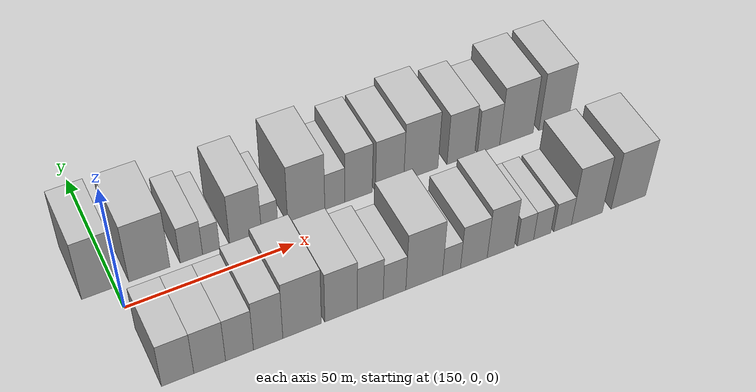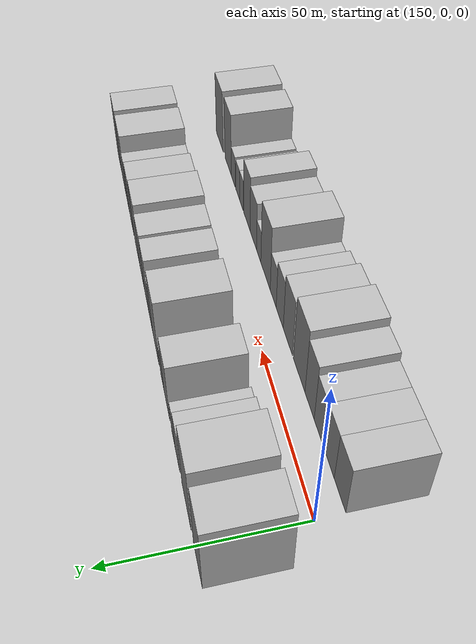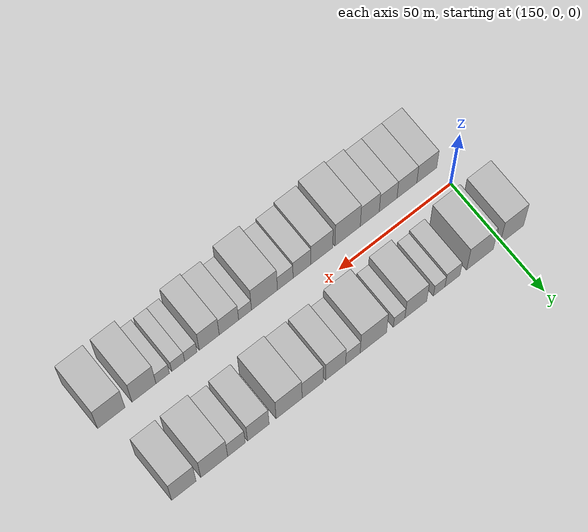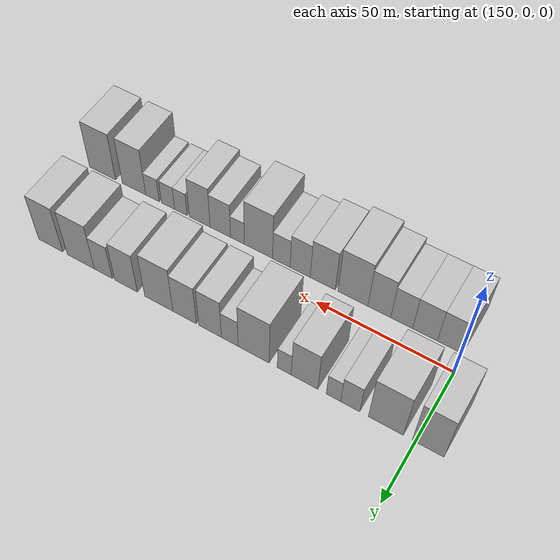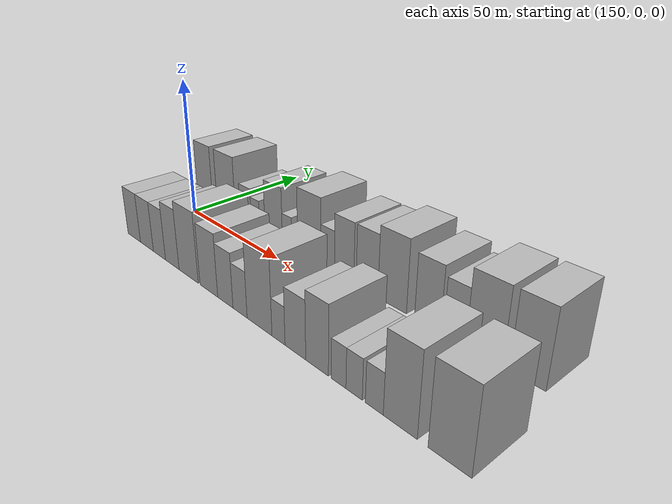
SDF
<sdf version="1.6">
 <world name="default">
  <model name="building_14">
   <static>1</static>
   <pose>145.7242 17.5000 0 0.000000 0.000000 1.570796</pose>
   <link name="link">
    <pose>0 0 12.00 0 0 0</pose>
    <collision name="collision"><geometry><box><size>20.0000 10.5395 24.0000</size></box></geometry></collision>
    <visual name="visual">
     <cast_shadows>0</cast_shadows>
     <geometry><box><size>20.0000 10.5395 24.0000</size></box></geometry>
     <material>
      <script>
       <uri>model://HANNAS_wall/materials/scripts</uri>
       <uri>model://HANNAS_wall/materials/textures</uri>
       <name>vrc/HANNAS_wall</name>
      </script>
     </material>
    </visual>
   </link>
  </model>
  <model name="building_15">
   <static>1</static>
   <pose>159.9695 17.5000 0 0.000000 0.000000 1.570796</pose>
   <link name="link">
    <pose>0 0 12.00 0 0 0</pose>
    <collision name="collision"><geometry><box><size>20.0000 11.9512 24.0000</size></box></geometry></collision>
    <visual name="visual">
     <cast_shadows>0</cast_shadows>
     <geometry><box><size>20.0000 11.9512 24.0000</size></box></geometry>
     <material>
      <script>
       <uri>model://HANNAS_wall/materials/scripts</uri>
       <uri>model://HANNAS_wall/materials/textures</uri>
       <name>vrc/HANNAS_wall</name>
      </script>
     </material>
    </visual>
   </link>
  </model>
  <model name="building_16">
   <static>1</static>
   <pose>172.2818 17.5000 0 0.000000 0.000000 1.570796</pose>
   <link name="link">
    <pose>0 0 7.50 0 0 0</pose>
    <collision name="collision"><geometry><box><size>20.0000 6.6733 15.0000</size></box></geometry></collision>
    <visual name="visual">
     <cast_shadows>0</cast_shadows>
     <geometry><box><size>20.0000 6.6733 15.0000</size></box></geometry>
     <material>
      <script>
       <uri>model://HANNAS_wall/materials/scripts</uri>
       <uri>model://HANNAS_wall/materials/textures</uri>
       <name>vrc/HANNAS_wall</name>
      </script>
     </material>
    </visual>
   </link>
  </model>
  <model name="building_17">
   <static>1</static>
   <pose>178.1721 17.5000 0 0.000000 0.000000 1.570796</pose>
   <link name="link">
    <pose>0 0 6.00 0 0 0</pose>
    <collision name="collision"><geometry><box><size>20.0000 5.1073 12.0000</size></box></geometry></collision>
    <visual name="visual">
     <cast_shadows>0</cast_shadows>
     <geometry><box><size>20.0000 5.1073 12.0000</size></box></geometry>
     <material>
      <script>
       <uri>model://HANNAS_wall/materials/scripts</uri>
       <uri>model://HANNAS_wall/materials/textures</uri>
       <name>vrc/HANNAS_wall</name>
      </script>
     </material>
    </visual>
   </link>
  </model>
  <model name="building_18">
   <static>1</static>
   <pose>188.5494 17.5000 0 0.000000 0.000000 1.570796</pose>
   <link name="link">
    <pose>0 0 10.50 0 0 0</pose>
    <collision name="collision"><geometry><box><size>20.0000 9.6472 21.0000</size></box></geometry></collision>
    <visual name="visual">
     <cast_shadows>0</cast_shadows>
     <geometry><box><size>20.0000 9.6472 21.0000</size></box></geometry>
     <material>
      <script>
       <uri>model://HANNAS_wall/materials/scripts</uri>
       <uri>model://HANNAS_wall/materials/textures</uri>
       <name>vrc/HANNAS_wall</name>
      </script>
     </material>
    </visual>
   </link>
  </model>
  <model name="building_19">
   <static>1</static>
   <pose>195.9077 17.5000 0 0.000000 0.000000 1.570796</pose>
   <link name="link">
    <pose>0 0 6.00 0 0 0</pose>
    <collision name="collision"><geometry><box><size>20.0000 5.0694 12.0000</size></box></geometry></collision>
    <visual name="visual">
     <cast_shadows>0</cast_shadows>
     <geometry><box><size>20.0000 5.0694 12.0000</size></box></geometry>
     <material>
      <script>
       <uri>model://HANNAS_wall/materials/scripts</uri>
       <uri>model://HANNAS_wall/materials/textures</uri>
       <name>vrc/HANNAS_wall</name>
      </script>
     </material>
    </visual>
   </link>
  </model>
  <model name="building_20">
   <static>1</static>
   <pose>207.2288 17.5000 0 0.000000 0.000000 1.570796</pose>
   <link name="link">
    <pose>0 0 12.00 0 0 0</pose>
    <collision name="collision"><geometry><box><size>20.0000 11.5728 24.0000</size></box></geometry></collision>
    <visual name="visual">
     <cast_shadows>0</cast_shadows>
     <geometry><box><size>20.0000 11.5728 24.0000</size></box></geometry>
     <material>
      <script>
       <uri>model://HANNAS_wall/materials/scripts</uri>
       <uri>model://HANNAS_wall/materials/textures</uri>
       <name>vrc/HANNAS_wall</name>
      </script>
     </material>
    </visual>
   </link>
  </model>
  <model name="building_21">
   <static>1</static>
   <pose>216.1947 17.5000 0 0.000000 0.000000 1.570796</pose>
   <link name="link">
    <pose>0 0 7.50 0 0 0</pose>
    <collision name="collision"><geometry><box><size>20.0000 6.3590 15.0000</size></box></geometry></collision>
    <visual name="visual">
     <cast_shadows>0</cast_shadows>
     <geometry><box><size>20.0000 6.3590 15.0000</size></box></geometry>
     <material>
      <script>
       <uri>model://HANNAS_wall/materials/scripts</uri>
       <uri>model://HANNAS_wall/materials/textures</uri>
       <name>vrc/HANNAS_wall</name>
      </script>
     </material>
    </visual>
   </link>
  </model>
  <model name="building_22">
   <static>1</static>
   <pose>223.7285 17.5000 0 0.000000 0.000000 1.570796</pose>
   <link name="link">
    <pose>0 0 10.50 0 0 0</pose>
    <collision name="collision"><geometry><box><size>20.0000 8.7087 21.0000</size></box></geometry></collision>
    <visual name="visual">
     <cast_shadows>0</cast_shadows>
     <geometry><box><size>20.0000 8.7087 21.0000</size></box></geometry>
     <material>
      <script>
       <uri>model://HANNAS_wall/materials/scripts</uri>
       <uri>model://HANNAS_wall/materials/textures</uri>
       <name>vrc/HANNAS_wall</name>
      </script>
     </material>
    </visual>
   </link>
  </model>
  <model name="building_23">
   <static>1</static>
   <pose>233.6760 17.5000 0 0.000000 0.000000 1.570796</pose>
   <link name="link">
    <pose>0 0 10.50 0 0 0</pose>
    <collision name="collision"><geometry><box><size>20.0000 9.1863 21.0000</size></box></geometry></collision>
    <visual name="visual">
     <cast_shadows>0</cast_shadows>
     <geometry><box><size>20.0000 9.1863 21.0000</size></box></geometry>
     <material>
      <script>
       <uri>model://HANNAS_wall/materials/scripts</uri>
       <uri>model://HANNAS_wall/materials/textures</uri>
       <name>vrc/HANNAS_wall</name>
      </script>
     </material>
    </visual>
   </link>
  </model>
  <model name="building_24">
   <static>1</static>
   <pose>243.8894 17.5000 0 0.000000 0.000000 1.570796</pose>
   <link name="link">
    <pose>0 0 12.00 0 0 0</pose>
    <collision name="collision"><geometry><box><size>20.0000 11.2405 24.0000</size></box></geometry></collision>
    <visual name="visual">
     <cast_shadows>0</cast_shadows>
     <geometry><box><size>20.0000 11.2405 24.0000</size></box></geometry>
     <material>
      <script>
       <uri>model://HANNAS_wall/materials/scripts</uri>
       <uri>model://HANNAS_wall/materials/textures</uri>
       <name>vrc/HANNAS_wall</name>
      </script>
     </material>
    </visual>
   </link>
  </model>
  <model name="building_25">
   <static>1</static>
   <pose>257.1364 17.5000 0 0.000000 0.000000 1.570796</pose>
   <link name="link">
    <pose>0 0 10.50 0 0 0</pose>
    <collision name="collision"><geometry><box><size>20.0000 9.2535 21.0000</size></box></geometry></collision>
    <visual name="visual">
     <cast_shadows>0</cast_shadows>
     <geometry><box><size>20.0000 9.2535 21.0000</size></box></geometry>
     <material>
      <script>
       <uri>model://HANNAS_wall/materials/scripts</uri>
       <uri>model://HANNAS_wall/materials/textures</uri>
       <name>vrc/HANNAS_wall</name>
      </script>
     </material>
    </visual>
   </link>
  </model>
  <model name="building_26">
   <static>1</static>
   <pose>266.4977 17.5000 0 0.000000 0.000000 1.570796</pose>
   <link name="link">
    <pose>0 0 9.00 0 0 0</pose>
    <collision name="collision"><geometry><box><size>20.0000 7.4690 18.0000</size></box></geometry></collision>
    <visual name="visual">
     <cast_shadows>0</cast_shadows>
     <geometry><box><size>20.0000 7.4690 18.0000</size></box></geometry>
     <material>
      <script>
       <uri>model://HANNAS_wall/materials/scripts</uri>
       <uri>model://HANNAS_wall/materials/textures</uri>
       <name>vrc/HANNAS_wall</name>
      </script>
     </material>
    </visual>
   </link>
  </model>
  <model name="building_27">
   <static>1</static>
   <pose>275.9784 17.5000 0 0.000000 0.000000 1.570796</pose>
   <link name="link">
    <pose>0 0 12.00 0 0 0</pose>
    <collision name="collision"><geometry><box><size>20.0000 11.4924 24.0000</size></box></geometry></collision>
    <visual name="visual">
     <cast_shadows>0</cast_shadows>
     <geometry><box><size>20.0000 11.4924 24.0000</size></box></geometry>
     <material>
      <script>
       <uri>model://HANNAS_wall/materials/scripts</uri>
       <uri>model://HANNAS_wall/materials/textures</uri>
       <name>vrc/HANNAS_wall</name>
      </script>
     </material>
    </visual>
   </link>
  </model>
  <model name="building_28">
   <static>1</static>
   <pose>288.9114 17.5000 0 0.000000 0.000000 1.570796</pose>
   <link name="link">
    <pose>0 0 12.00 0 0 0</pose>
    <collision name="collision"><geometry><box><size>20.0000 10.3736 24.0000</size></box></geometry></collision>
    <visual name="visual">
     <cast_shadows>0</cast_shadows>
     <geometry><box><size>20.0000 10.3736 24.0000</size></box></geometry>
     <material>
      <script>
       <uri>model://HANNAS_wall/materials/scripts</uri>
       <uri>model://HANNAS_wall/materials/textures</uri>
       <name>vrc/HANNAS_wall</name>
      </script>
     </material>
    </visual>
   </link>
  </model>
  <model name="building_45">
   <static>1</static>
   <pose>154.8388 -17.5000 0 0.000000 0.000000 1.570796</pose>
   <link name="link">
    <pose>0 0 9.00 0 0 0</pose>
    <collision name="collision"><geometry><box><size>20.0000 8.9707 18.0000</size></box></geometry></collision>
    <visual name="visual">
     <cast_shadows>0</cast_shadows>
     <geometry><box><size>20.0000 8.9707 18.0000</size></box></geometry>
     <material>
      <script>
       <uri>model://HANNAS_wall/materials/scripts</uri>
       <uri>model://HANNAS_wall/materials/textures</uri>
       <name>vrc/HANNAS_wall</name>
      </script>
     </material>
    </visual>
   </link>
  </model>
  <model name="building_46">
   <static>1</static>
   <pose>163.7618 -17.5000 0 0.000000 0.000000 1.570796</pose>
   <link name="link">
    <pose>0 0 9.00 0 0 0</pose>
    <collision name="collision"><geometry><box><size>20.0000 8.8752 18.0000</size></box></geometry></collision>
    <visual name="visual">
     <cast_shadows>0</cast_shadows>
     <geometry><box><size>20.0000 8.8752 18.0000</size></box></geometry>
     <material>
      <script>
       <uri>model://HANNAS_wall/materials/scripts</uri>
       <uri>model://HANNAS_wall/materials/textures</uri>
       <name>vrc/HANNAS_wall</name>
      </script>
     </material>
    </visual>
   </link>
  </model>
  <model name="building_47">
   <static>1</static>
   <pose>172.1577 -17.5000 0 0.000000 0.000000 1.570796</pose>
   <link name="link">
    <pose>0 0 9.00 0 0 0</pose>
    <collision name="collision"><geometry><box><size>20.0000 7.9167 18.0000</size></box></geometry></collision>
    <visual name="visual">
     <cast_shadows>0</cast_shadows>
     <geometry><box><size>20.0000 7.9167 18.0000</size></box></geometry>
     <material>
      <script>
       <uri>model://HANNAS_wall/materials/scripts</uri>
       <uri>model://HANNAS_wall/materials/textures</uri>
       <name>vrc/HANNAS_wall</name>
      </script>
     </material>
    </visual>
   </link>
  </model>
  <model name="building_48">
   <static>1</static>
   <pose>180.3307 -17.5000 0 0.000000 0.000000 1.570796</pose>
   <link name="link">
    <pose>0 0 10.50 0 0 0</pose>
    <collision name="collision"><geometry><box><size>20.0000 8.4293 21.0000</size></box></geometry></collision>
    <visual name="visual">
     <cast_shadows>0</cast_shadows>
     <geometry><box><size>20.0000 8.4293 21.0000</size></box></geometry>
     <material>
      <script>
       <uri>model://HANNAS_wall/materials/scripts</uri>
       <uri>model://HANNAS_wall/materials/textures</uri>
       <name>vrc/HANNAS_wall</name>
      </script>
     </material>
    </visual>
   </link>
  </model>
  <model name="building_49">
   <static>1</static>
   <pose>190.1594 -17.5000 0 0.000000 0.000000 1.570796</pose>
   <link name="link">
    <pose>0 0 12.00 0 0 0</pose>
    <collision name="collision"><geometry><box><size>20.0000 11.2281 24.0000</size></box></geometry></collision>
    <visual name="visual">
     <cast_shadows>0</cast_shadows>
     <geometry><box><size>20.0000 11.2281 24.0000</size></box></geometry>
     <material>
      <script>
       <uri>model://HANNAS_wall/materials/scripts</uri>
       <uri>model://HANNAS_wall/materials/textures</uri>
       <name>vrc/HANNAS_wall</name>
      </script>
     </material>
    </visual>
   </link>
  </model>
  <model name="building_50">
   <static>1</static>
   <pose>201.5630 -17.5000 0 0.000000 0.000000 1.570796</pose>
   <link name="link">
    <pose>0 0 10.50 0 0 0</pose>
    <collision name="collision"><geometry><box><size>20.0000 9.5789 21.0000</size></box></geometry></collision>
    <visual name="visual">
     <cast_shadows>0</cast_shadows>
     <geometry><box><size>20.0000 9.5789 21.0000</size></box></geometry>
     <material>
      <script>
       <uri>model://HANNAS_wall/materials/scripts</uri>
       <uri>model://HANNAS_wall/materials/textures</uri>
       <name>vrc/HANNAS_wall</name>
      </script>
     </material>
    </visual>
   </link>
  </model>
  <model name="building_51">
   <static>1</static>
   <pose>210.2714 -17.5000 0 0.000000 0.000000 1.570796</pose>
   <link name="link">
    <pose>0 0 9.00 0 0 0</pose>
    <collision name="collision"><geometry><box><size>20.0000 7.8379 18.0000</size></box></geometry></collision>
    <visual name="visual">
     <cast_shadows>0</cast_shadows>
     <geometry><box><size>20.0000 7.8379 18.0000</size></box></geometry>
     <material>
      <script>
       <uri>model://HANNAS_wall/materials/scripts</uri>
       <uri>model://HANNAS_wall/materials/textures</uri>
       <name>vrc/HANNAS_wall</name>
      </script>
     </material>
    </visual>
   </link>
  </model>
  <model name="building_52">
   <static>1</static>
   <pose>217.6264 -17.5000 0 0.000000 0.000000 1.570796</pose>
   <link name="link">
    <pose>0 0 7.50 0 0 0</pose>
    <collision name="collision"><geometry><box><size>20.0000 6.8721 15.0000</size></box></geometry></collision>
    <visual name="visual">
     <cast_shadows>0</cast_shadows>
     <geometry><box><size>20.0000 6.8721 15.0000</size></box></geometry>
     <material>
      <script>
       <uri>model://HANNAS_wall/materials/scripts</uri>
       <uri>model://HANNAS_wall/materials/textures</uri>
       <name>vrc/HANNAS_wall</name>
      </script>
     </material>
    </visual>
   </link>
  </model>
  <model name="building_53">
   <static>1</static>
   <pose>226.7164 -17.5000 0 0.000000 0.000000 1.570796</pose>
   <link name="link">
    <pose>0 0 12.00 0 0 0</pose>
    <collision name="collision"><geometry><box><size>20.0000 11.3078 24.0000</size></box></geometry></collision>
    <visual name="visual">
     <cast_shadows>0</cast_shadows>
     <geometry><box><size>20.0000 11.3078 24.0000</size></box></geometry>
     <material>
      <script>
       <uri>model://HANNAS_wall/materials/scripts</uri>
       <uri>model://HANNAS_wall/materials/textures</uri>
       <name>vrc/HANNAS_wall</name>
      </script>
     </material>
    </visual>
   </link>
  </model>
  <model name="building_54">
   <static>1</static>
   <pose>235.1718 -17.5000 0 0.000000 0.000000 1.570796</pose>
   <link name="link">
    <pose>0 0 6.00 0 0 0</pose>
    <collision name="collision"><geometry><box><size>20.0000 5.6031 12.0000</size></box></geometry></collision>
    <visual name="visual">
     <cast_shadows>0</cast_shadows>
     <geometry><box><size>20.0000 5.6031 12.0000</size></box></geometry>
     <material>
      <script>
       <uri>model://HANNAS_wall/materials/scripts</uri>
       <uri>model://HANNAS_wall/materials/textures</uri>
       <name>vrc/HANNAS_wall</name>
      </script>
     </material>
    </visual>
   </link>
  </model>
  <model name="building_55">
   <static>1</static>
   <pose>242.1747 -17.5000 0 0.000000 0.000000 1.570796</pose>
   <link name="link">
    <pose>0 0 9.00 0 0 0</pose>
    <collision name="collision"><geometry><box><size>20.0000 8.4026 18.0000</size></box></geometry></collision>
    <visual name="visual">
     <cast_shadows>0</cast_shadows>
     <geometry><box><size>20.0000 8.4026 18.0000</size></box></geometry>
     <material>
      <script>
       <uri>model://HANNAS_wall/materials/scripts</uri>
       <uri>model://HANNAS_wall/materials/textures</uri>
       <name>vrc/HANNAS_wall</name>
      </script>
     </material>
    </visual>
   </link>
  </model>
  <model name="building_56">
   <static>1</static>
   <pose>250.6954 -17.5000 0 0.000000 0.000000 1.570796</pose>
   <link name="link">
    <pose>0 0 10.50 0 0 0</pose>
    <collision name="collision"><geometry><box><size>20.0000 8.6389 21.0000</size></box></geometry></collision>
    <visual name="visual">
     <cast_shadows>0</cast_shadows>
     <geometry><box><size>20.0000 8.6389 21.0000</size></box></geometry>
     <material>
      <script>
       <uri>model://HANNAS_wall/materials/scripts</uri>
       <uri>model://HANNAS_wall/materials/textures</uri>
       <name>vrc/HANNAS_wall</name>
      </script>
     </material>
    </visual>
   </link>
  </model>
  <model name="building_57">
   <static>1</static>
   <pose>258.6454 -17.5000 0 0.000000 0.000000 1.570796</pose>
   <link name="link">
    <pose>0 0 6.00 0 0 0</pose>
    <collision name="collision"><geometry><box><size>20.0000 5.2610 12.0000</size></box></geometry></collision>
    <visual name="visual">
     <cast_shadows>0</cast_shadows>
     <geometry><box><size>20.0000 5.2610 12.0000</size></box></geometry>
     <material>
      <script>
       <uri>model://HANNAS_wall/materials/scripts</uri>
       <uri>model://HANNAS_wall/materials/textures</uri>
       <name>vrc/HANNAS_wall</name>
      </script>
     </material>
    </visual>
   </link>
  </model>
  <model name="building_58">
   <static>1</static>
   <pose>264.0658 -17.5000 0 0.000000 0.000000 1.570796</pose>
   <link name="link">
    <pose>0 0 6.00 0 0 0</pose>
    <collision name="collision"><geometry><box><size>20.0000 5.5798 12.0000</size></box></geometry></collision>
    <visual name="visual">
     <cast_shadows>0</cast_shadows>
     <geometry><box><size>20.0000 5.5798 12.0000</size></box></geometry>
     <material>
      <script>
       <uri>model://HANNAS_wall/materials/scripts</uri>
       <uri>model://HANNAS_wall/materials/textures</uri>
       <name>vrc/HANNAS_wall</name>
      </script>
     </material>
    </visual>
   </link>
  </model>
  <model name="building_59">
   <static>1</static>
   <pose>270.7456 -17.5000 0 0.000000 0.000000 1.570796</pose>
   <link name="link">
    <pose>0 0 6.00 0 0 0</pose>
    <collision name="collision"><geometry><box><size>20.0000 5.7798 12.0000</size></box></geometry></collision>
    <visual name="visual">
     <cast_shadows>0</cast_shadows>
     <geometry><box><size>20.0000 5.7798 12.0000</size></box></geometry>
     <material>
      <script>
       <uri>model://HANNAS_wall/materials/scripts</uri>
       <uri>model://HANNAS_wall/materials/textures</uri>
       <name>vrc/HANNAS_wall</name>
      </script>
     </material>
    </visual>
   </link>
  </model>
  <model name="building_60">
   <static>1</static>
   <pose>278.7585 -17.5000 0 0.000000 0.000000 1.570796</pose>
   <link name="link">
    <pose>0 0 12.00 0 0 0</pose>
    <collision name="collision"><geometry><box><size>20.0000 10.2461 24.0000</size></box></geometry></collision>
    <visual name="visual">
     <cast_shadows>0</cast_shadows>
     <geometry><box><size>20.0000 10.2461 24.0000</size></box></geometry>
     <material>
      <script>
       <uri>model://HANNAS_wall/materials/scripts</uri>
       <uri>model://HANNAS_wall/materials/textures</uri>
       <name>vrc/HANNAS_wall</name>
      </script>
     </material>
    </visual>
   </link>
  </model>
  <model name="building_61">
   <static>1</static>
   <pose>292.6968 -17.5000 0 0.000000 0.000000 1.570796</pose>
   <link name="link">
    <pose>0 0 12.00 0 0 0</pose>
    <collision name="collision"><geometry><box><size>20.0000 11.6304 24.0000</size></box></geometry></collision>
    <visual name="visual">
     <cast_shadows>0</cast_shadows>
     <geometry><box><size>20.0000 11.6304 24.0000</size></box></geometry>
     <material>
      <script>
       <uri>model://HANNAS_wall/materials/scripts</uri>
       <uri>model://HANNAS_wall/materials/textures</uri>
       <name>vrc/HANNAS_wall</name>
      </script>
     </material>
    </visual>
   </link>
  </model>
 </world>
</sdf>
